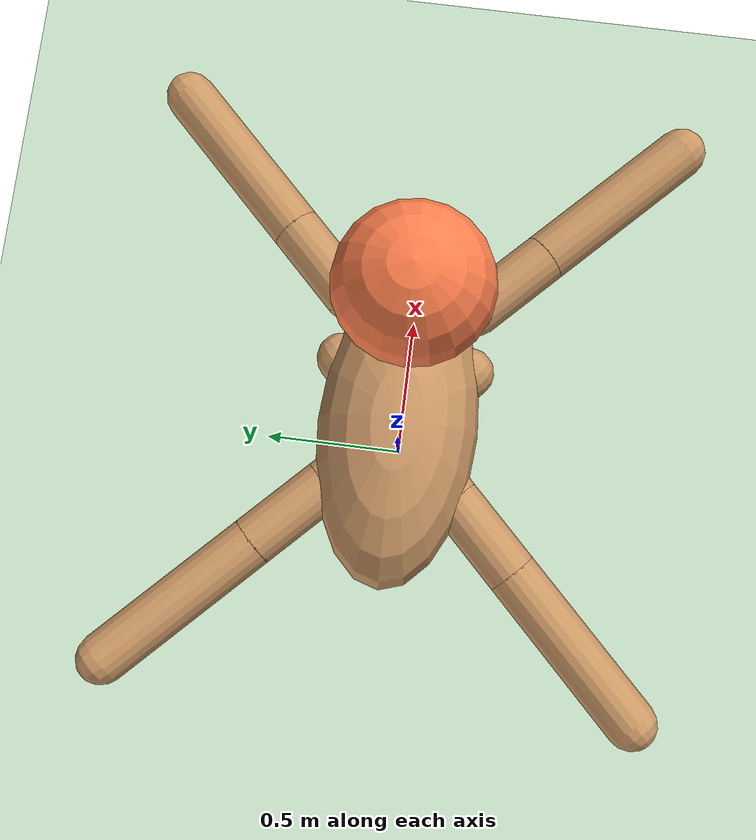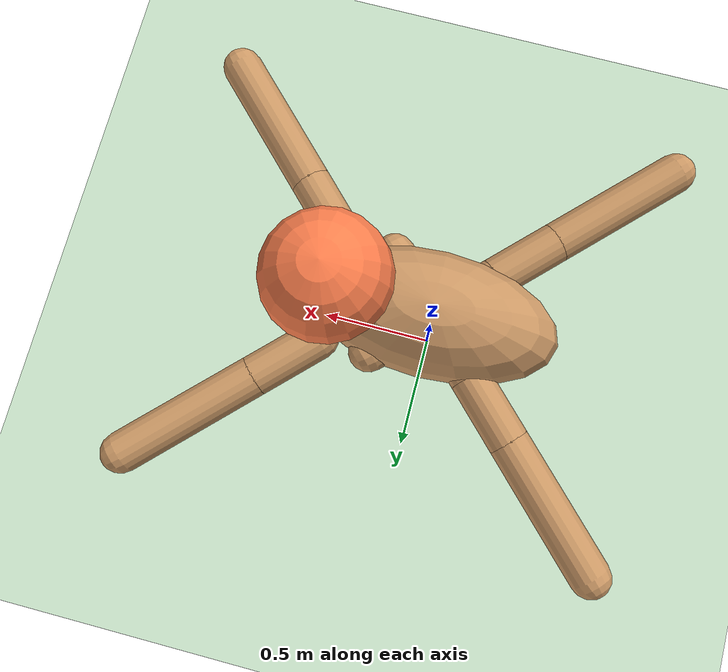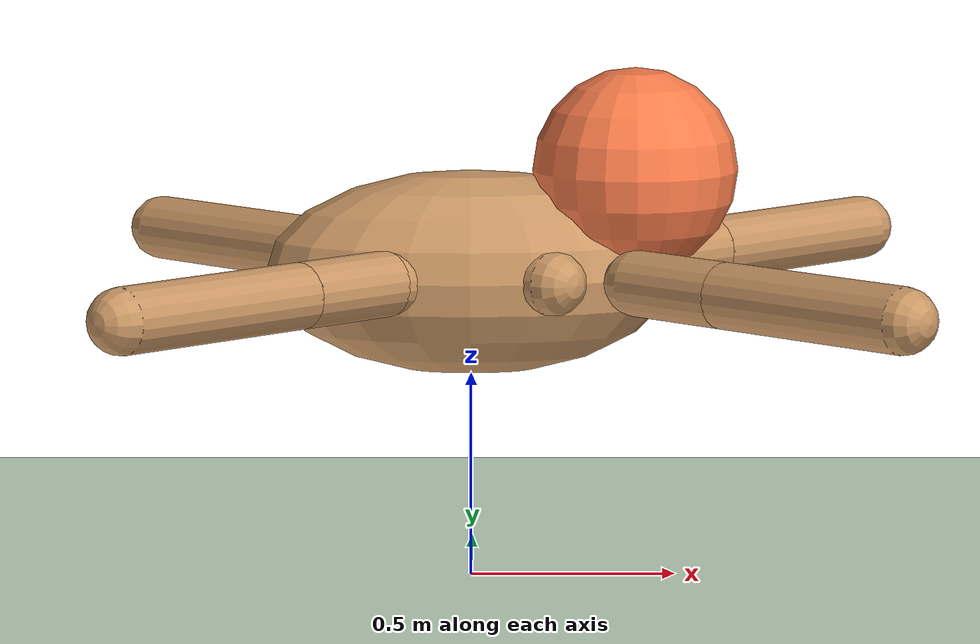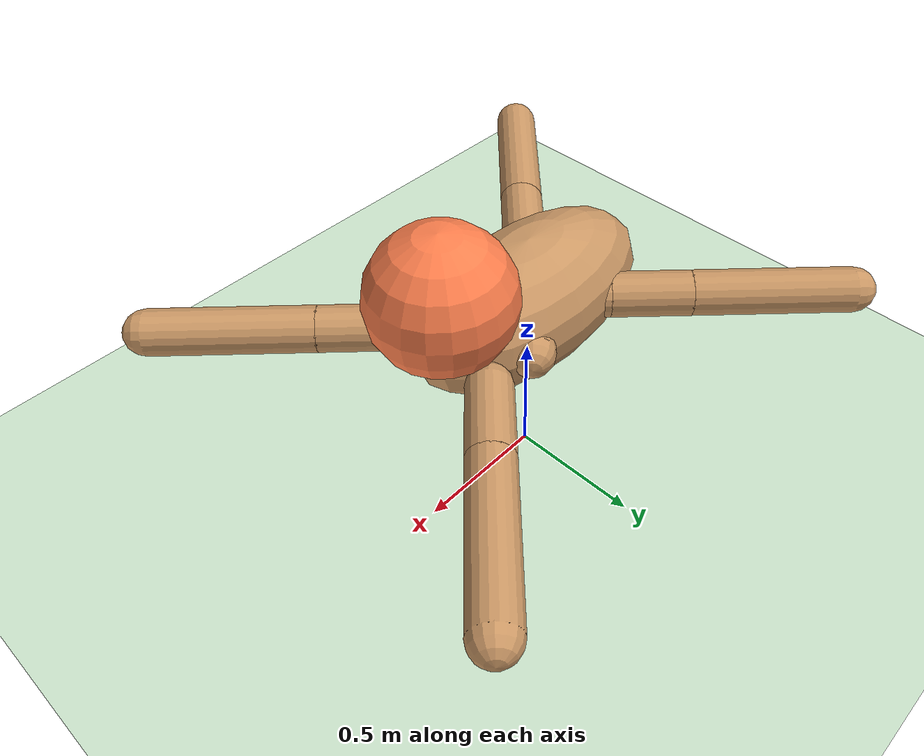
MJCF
<mujoco model="ant">
  <compiler angle="degree" coordinate="local" inertiafromgeom="true" settotalmass="40"/>
  <option integrator="RK4" timestep="0.005"/>
  <custom>
    <numeric data="0.0 0.0 0.55 1.0 0.0 0.0 0.0 0.0 1.0 0.0 -1.0 0.0 -1.0 0.0 1.0" name="init_qpos"/>
  </custom>
  <default>
    <joint armature="1" damping="1" limited="true"/>
    <geom conaffinity="0" condim="3" density="5.0" friction="1 0.5 0.5" margin="0.01" rgba="0.8 0.6 0.4 1" material="geom"/>
  </default>
    <asset>
        <texture type="skybox" builtin="gradient" rgb1=".1 .12 .15" rgb2="0 0 0" width="100" height="100"/>
        <texture builtin="checker" height="100" name="texplane" rgb1=".1 .1 .1" rgb2=".15 .15 0.15" type="2d" width="100"/>
        <material name="MatPlane" reflectance="0.5" shininess="1" specular="1" texrepeat="50 50" texture="texplane"/>
        <texture builtin="flat" height="1278" mark="cross" markrgb="1 1 1" name="texgeom" random="0.01" rgb1="0.8 0.6 0.4" rgb2="0.8 0.6 0.4" type="cube" width="127"/>
        <material name="geom" texture="texgeom" texuniform="true"/>
    </asset>
  <worldbody>
    <light cutoff="100" diffuse="1 1 1" dir="-0 0 -1.3" directional="true" exponent="1" pos="0 0 1.3" specular=".1 .1 .1"/>
    <geom conaffinity="1" condim="3" material="MatPlane" name="floor" pos="0 0 0" rgba="0.8 0.9 0.8 1" size="40 40 40" type="plane"/>
    <body name="torso" pos="0 0 0.75">
      <geom name="torso_geom" pos="0 0 0" size="0.50 0.25 0.25" type="ellipsoid"/>
      <geom name="head" density="0.01" rgba="1.0 0.5 0.3 1" pos="0.4 0 0.25" size="0.25" type="sphere"/>
      <joint armature="0" damping="0" limited="false" margin="0.01" name="root" pos="0 0 0" type="free"/>
      <body name="front_left_leg" pos="0 0 0">
        <geom fromto="0.0 0.0 0.0 0.2 0.2 0.0" name="aux_1_geom" size="0.08" type="capsule"/>
        <body name="aux_1" pos="0.4 0.2 0">
          <joint axis="0 0 1" name="hip_1" pos="0.0 0.0 0.0" range="-30 30" type="hinge"/>
          <geom fromto="0.0 0.0 0.0 0.2 0.2 0.0" name="left_leg_geom" size="0.08" type="capsule"/>
          <body pos="0.2 0.2 0">
            <joint axis="-1 1 0" name="ankle_1" pos="0.0 0.0 0.0" range="30 70" type="hinge"/>
            <geom fromto="0.0 0.0 0.0 0.4 0.4 0.0" name="left_ankle_geom" size="0.08" type="capsule"/>
          </body>
        </body>
      </body>
      <body name="front_right_leg" pos="0 0 0">
        <geom fromto="0.0 0.0 0.0 -0.2 0.2 0.0" name="aux_2_geom" size="0.08" type="capsule"/>
        <body name="aux_2" pos="-0.2 0.2 0">
          <joint axis="0 0 1" name="hip_2" pos="0.0 0.0 0.0" range="-30 30" type="hinge"/>
          <geom fromto="0.0 0.0 0.0 -0.2 0.2 0.0" name="right_leg_geom" size="0.08" type="capsule"/>
          <body pos="-0.2 0.2 0">
            <joint axis="1 1 0" name="ankle_2" pos="0.0 0.0 0.0" range="-70 -30" type="hinge"/>
            <geom fromto="0.0 0.0 0.0 -0.4 0.4 0.0" name="right_ankle_geom" size="0.08" type="capsule"/>
          </body>
        </body>
      </body>
      <body name="back_leg" pos="0 0 0">
        <geom fromto="0.0 0.0 0.0 -0.2 -0.2 0.0" name="aux_3_geom" size="0.08" type="capsule"/>
        <body name="aux_3" pos="-0.2 -0.2 0">
          <joint axis="0 0 1" name="hip_3" pos="0.0 0.0 0.0" range="-30 30" type="hinge"/>
          <geom fromto="0.0 0.0 0.0 -0.2 -0.2 0.0" name="back_leg_geom" size="0.08" type="capsule"/>
          <body pos="-0.2 -0.2 0">
            <joint axis="-1 1 0" name="ankle_3" pos="0.0 0.0 0.0" range="-70 -30" type="hinge"/>
            <geom fromto="0.0 0.0 0.0 -0.4 -0.4 0.0" name="third_ankle_geom" size="0.08" type="capsule"/>
          </body>
        </body>
      </body>
      <body name="right_back_leg" pos="0 0 0">
        <geom fromto="0.0 0.0 0.0 0.2 -0.2 0.0" name="aux_4_geom" size="0.08" type="capsule"/>
        <body name="aux_4" pos="0.4 -0.2 0">
          <joint axis="0 0 1" name="hip_4" pos="0.0 0.0 0.0" range="-30 30" type="hinge"/>
          <geom fromto="0.0 0.0 0.0 0.2 -0.2 0.0" name="rightback_leg_geom" size="0.08" type="capsule"/>
          <body pos="0.2 -0.2 0">
            <joint axis="1 1 0" name="ankle_4" pos="0.0 0.0 0.0" range="30 70" type="hinge"/>
            <geom fromto="0.0 0.0 0.0 0.4 -0.4 0.0" name="fourth_ankle_geom" size="0.08" type="capsule"/>
          </body>
        </body>
      </body>
    </body>

  </worldbody>
  <actuator>
    <motor ctrllimited="true" ctrlrange="-1.0 1.0" joint="hip_4" gear="150"/>
    <motor ctrllimited="true" ctrlrange="-1.0 1.0" joint="ankle_4" gear="150"/>
    <motor ctrllimited="true" ctrlrange="-1.0 1.0" joint="hip_1" gear="150"/>
    <motor ctrllimited="true" ctrlrange="-1.0 1.0" joint="ankle_1" gear="150"/>
    <motor ctrllimited="true" ctrlrange="-1.0 1.0" joint="hip_2" gear="150"/>
    <motor ctrllimited="true" ctrlrange="-1.0 1.0" joint="ankle_2" gear="150"/>
    <motor ctrllimited="true" ctrlrange="-1.0 1.0" joint="hip_3" gear="150"/>
    <motor ctrllimited="true" ctrlrange="-1.0 1.0" joint="ankle_3" gear="150"/>
  </actuator>
  <sensor>
    <jointpos name='pos_hip_1' joint='hip_1' />
    <jointpos name='pos_hip_2' joint='hip_2' />
    <jointpos name='pos_hip_3' joint='hip_3' />
    <jointpos name='pos_hip_4' joint='hip_4' />
    <jointpos name='pos_ankle_1' joint='ankle_1' />
    <jointpos name='pos_ankle_2' joint='ankle_2' />
    <jointpos name='pos_ankle_3' joint='ankle_3' />
    <jointpos name='pos_ankle_4' joint='ankle_4' />

    <jointvel name='vel_hip_1'   joint='hip_1' />
    <jointvel name='vel_hip_2'   joint='hip_2' />
    <jointvel name='vel_hip_3'   joint='hip_3' />
    <jointvel name='vel_hip_4'   joint='hip_4' />
    <jointvel name='vel_ankle_1' joint='ankle_1' />
    <jointvel name='vel_ankle_2' joint='ankle_2' />
    <jointvel name='vel_ankle_3' joint='ankle_3' />
    <jointvel name='vel_ankle_4' joint='ankle_4' />
  </sensor>
</mujoco>
